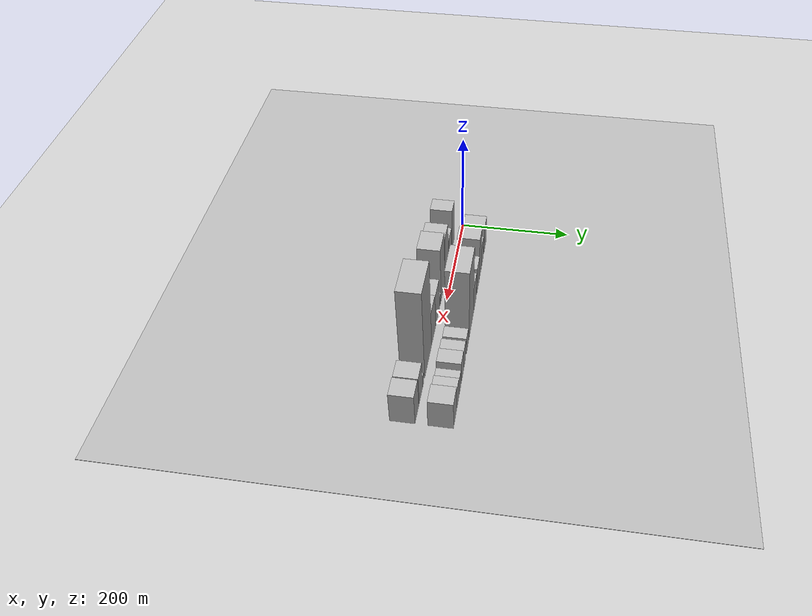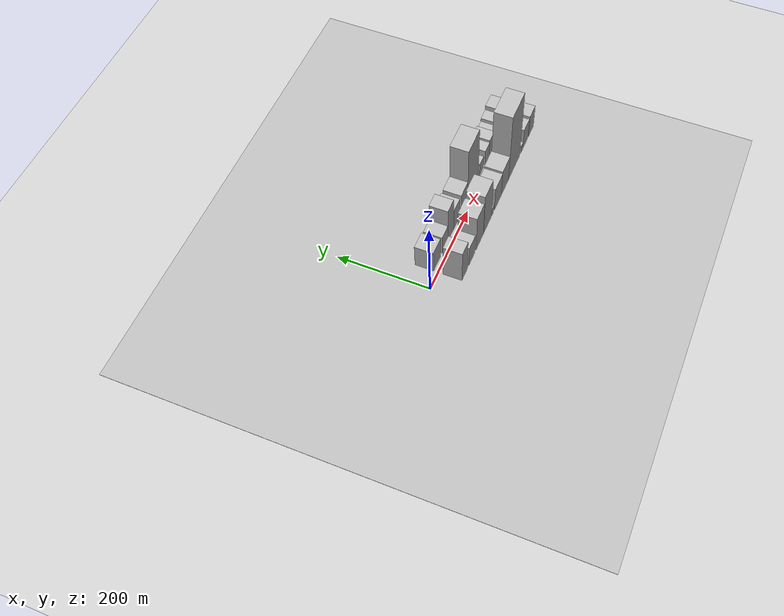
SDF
<?xml version="1.0" encoding="utf-8"?>

<sdf version="1.6">

   <world name="default">

      <gui fullscreen="0">

         <camera name="user_camera">

            <pose>-15 0 4.57585 0 0 0</pose>

            <view_controller>orbit</view_controller>

         </camera>

      </gui>

      <scene>

         <sky>

           <clouds>

             <speed>12</speed>

           </clouds>

         </sky>

         <ambient>0.4 0.4 0.4 1</ambient>

         <background>0.7 0.7 0.7 1</background>

         <shadows>1</shadows>

      </scene>

      <gravity>0 0 -9.8066</gravity>

      <magnetic_field>6e-06 2.3e-05 -4.2e-05</magnetic_field>

      <physics default="0" name="default_physics" type="ode">

         <ode>

            <solver>

               <type>quick</type>

               <iters>10</iters>

               <sor>1.0</sor>

               <use_dynamic_moi_rescaling>0</use_dynamic_moi_rescaling>

            </solver>

            <constraints>

               <cfm>0</cfm>

               <erp>0.2</erp>

               <contact_max_correcting_vel>100</contact_max_correcting_vel>

               <contact_surface_layer>0.001</contact_surface_layer>

            </constraints>

         </ode>

         <max_step_size>0.004</max_step_size>

         <real_time_factor>1</real_time_factor>

         <real_time_update_rate>250</real_time_update_rate>

      </physics>

      <light name="sun" type="directional">

         <cast_shadows>1</cast_shadows>

         <pose>0 0 10 0 0 0</pose>

         <diffuse>0.8 0.8 0.8 1</diffuse>

         <specular>0.2 0.2 0.2 1</specular>

         <attenuation>

            <range>1000</range>

            <constant>0.9</constant>

            <linear>0.01</linear>

            <quadratic>0.001</quadratic>

         </attenuation>

         <direction>-0.5 0.1 -0.9</direction>

      </light>

      <include>

         <name>ground_plane_1</name>

         <uri>model://HANNAS_ground_plane</uri>

         <pose>0 0 0  0 0 0</pose>

      </include>

      <include>

         <name>ground_plane_2</name>

         <uri>model://HANNAS_ground_plane</uri>

         <pose>100 0 0  0 0 0</pose>

      </include>

      <model name="building_1">

         <static>1</static>

         <pose frame="">58.0597 30.0000 0 0.000000 0.000000 1.570796</pose>

         <link name="link">

            <pose frame="">0 0 31.50 0 0 0</pose>

            <collision name="collision">

               <geometry>

                  <box>

                     <size>40.0000 36.1194 63.0000</size>

                  </box>

               </geometry>

               <max_contacts>10</max_contacts>

               <surface>

                  <contact>

                     <ode/>

                  </contact>

                  <bounce/>

                  <friction>

                     <torsional>

                        <ode/>

                     </torsional>

                     <ode/>

                  </friction>

               </surface>

            </collision>

            <visual name="visual">

               <cast_shadows>0</cast_shadows>

               <geometry>

                  <box>

                     <size>40.0000 36.1194 63.0000</size>

                  </box>

               </geometry>

               <material>

                  <script>

                     <uri>model://HANNAS_wall/materials/scripts</uri>

                     <uri>model://HANNAS_wall/materials/textures</uri>

                     <name>vrc/HANNAS_wall</name>

                  </script>

               </material>

            </visual>

            <self_collide>0</self_collide>

            <enable_wind>0</enable_wind>

            <kinematic>0</kinematic>

         </link>

      </model>

      <model name="building_2">

         <static>1</static>

         <pose frame="">100.5278 30.0000 0 0.000000 0.000000 1.570796</pose>

         <link name="link">

            <pose frame="">0 0 27.00 0 0 0</pose>

            <collision name="collision">

               <geometry>

                  <box>

                     <size>40.0000 30.8169 54.0000</size>

                  </box>

               </geometry>

               <max_contacts>10</max_contacts>

               <surface>

                  <contact>

                     <ode/>

                  </contact>

                  <bounce/>

                  <friction>

                     <torsional>

                        <ode/>

                     </torsional>

                     <ode/>

                  </friction>

               </surface>

            </collision>

            <visual name="visual">

               <cast_shadows>0</cast_shadows>

               <geometry>

                  <box>

                     <size>40.0000 30.8169 54.0000</size>

                  </box>

               </geometry>

               <material>

                  <script>

                     <uri>model://HANNAS_wall/materials/scripts</uri>

                     <uri>model://HANNAS_wall/materials/textures</uri>

                     <name>vrc/HANNAS_wall</name>

                  </script>

               </material>

            </visual>

            <self_collide>0</self_collide>

            <enable_wind>0</enable_wind>

            <kinematic>0</kinematic>

         </link>

      </model>

      <model name="building_3">

         <static>1</static>

         <pose frame="">131.2874 30.0000 0 0.000000 0.000000 1.570796</pose>

         <link name="link">

            <pose frame="">0 0 51.00 0 0 0</pose>

            <collision name="collision">

               <geometry>

                  <box>

                     <size>40.0000 30.7022 102.0000</size>

                  </box>

               </geometry>

               <max_contacts>10</max_contacts>

               <surface>

                  <contact>

                     <ode/>

                  </contact>

                  <bounce/>

                  <friction>

                     <torsional>

                        <ode/>

                     </torsional>

                     <ode/>

                  </friction>

               </surface>

            </collision>

            <visual name="visual">

               <cast_shadows>0</cast_shadows>

               <geometry>

                  <box>

                     <size>40.0000 30.7022 102.0000</size>

                  </box>

               </geometry>

               <material>

                  <script>

                     <uri>model://HANNAS_wall/materials/scripts</uri>

                     <uri>model://HANNAS_wall/materials/textures</uri>

                     <name>vrc/HANNAS_wall</name>

                  </script>

               </material>

            </visual>

            <self_collide>0</self_collide>

            <enable_wind>0</enable_wind>

            <kinematic>0</kinematic>

         </link>

      </model>

      <model name="building_4">

         <static>1</static>

         <pose frame="">163.2585 30.0000 0 0.000000 0.000000 1.570796</pose>

         <link name="link">

            <pose frame="">0 0 31.50 0 0 0</pose>

            <collision name="collision">

               <geometry>

                  <box>

                     <size>40.0000 33.2402 63.0000</size>

                  </box>

               </geometry>

               <max_contacts>10</max_contacts>

               <surface>

                  <contact>

                     <ode/>

                  </contact>

                  <bounce/>

                  <friction>

                     <torsional>

                        <ode/>

                     </torsional>

                     <ode/>

                  </friction>

               </surface>

            </collision>

            <visual name="visual">

               <cast_shadows>0</cast_shadows>

               <geometry>

                  <box>

                     <size>40.0000 33.2402 63.0000</size>

                  </box>

               </geometry>

               <material>

                  <script>

                     <uri>model://HANNAS_wall/materials/scripts</uri>

                     <uri>model://HANNAS_wall/materials/textures</uri>

                     <name>vrc/HANNAS_wall</name>

                  </script>

               </material>

            </visual>

            <self_collide>0</self_collide>

            <enable_wind>0</enable_wind>

            <kinematic>0</kinematic>

         </link>

      </model>

      <model name="building_5">

         <static>1</static>

         <pose frame="">206.4949 30.0000 0 0.000000 0.000000 1.570796</pose>

         <link name="link">

            <pose frame="">0 0 31.50 0 0 0</pose>

            <collision name="collision">

               <geometry>

                  <box>

                     <size>40.0000 37.2326 63.0000</size>

                  </box>

               </geometry>

               <max_contacts>10</max_contacts>

               <surface>

                  <contact>

                     <ode/>

                  </contact>

                  <bounce/>

                  <friction>

                     <torsional>

                        <ode/>

                     </torsional>

                     <ode/>

                  </friction>

               </surface>

            </collision>

            <visual name="visual">

               <cast_shadows>0</cast_shadows>

               <geometry>

                  <box>

                     <size>40.0000 37.2326 63.0000</size>

                  </box>

               </geometry>

               <material>

                  <script>

                     <uri>model://HANNAS_wall/materials/scripts</uri>

                     <uri>model://HANNAS_wall/materials/textures</uri>

                     <name>vrc/HANNAS_wall</name>

                  </script>

               </material>

            </visual>

            <self_collide>0</self_collide>

            <enable_wind>0</enable_wind>

            <kinematic>0</kinematic>

         </link>

      </model>

      <model name="building_6">

         <static>1</static>

         <pose frame="">255.5229 30.0000 0 0.000000 0.000000 1.570796</pose>

         <link name="link">

            <pose frame="">0 0 79.50 0 0 0</pose>

            <collision name="collision">

               <geometry>

                  <box>

                     <size>40.0000 60.8234 159.0000</size>

                  </box>

               </geometry>

               <max_contacts>10</max_contacts>

               <surface>

                  <contact>

                     <ode/>

                  </contact>

                  <bounce/>

                  <friction>

                     <torsional>

                        <ode/>

                     </torsional>

                     <ode/>

                  </friction>

               </surface>

            </collision>

            <visual name="visual">

               <cast_shadows>0</cast_shadows>

               <geometry>

                  <box>

                     <size>40.0000 60.8234 159.0000</size>

                  </box>

               </geometry>

               <material>

                  <script>

                     <uri>model://HANNAS_wall/materials/scripts</uri>

                     <uri>model://HANNAS_wall/materials/textures</uri>

                     <name>vrc/HANNAS_wall</name>

                  </script>

               </material>

            </visual>

            <self_collide>0</self_collide>

            <enable_wind>0</enable_wind>

            <kinematic>0</kinematic>

         </link>

      </model>

      <model name="building_7">

         <static>1</static>

         <pose frame="">305.5388 30.0000 0 0.000000 0.000000 1.570796</pose>

         <link name="link">

            <pose frame="">0 0 19.50 0 0 0</pose>

            <collision name="collision">

               <geometry>

                  <box>

                     <size>40.0000 23.2084 39.0000</size>

                  </box>

               </geometry>

               <max_contacts>10</max_contacts>

               <surface>

                  <contact>

                     <ode/>

                  </contact>

                  <bounce/>

                  <friction>

                     <torsional>

                        <ode/>

                     </torsional>

                     <ode/>

                  </friction>

               </surface>

            </collision>

            <visual name="visual">

               <cast_shadows>0</cast_shadows>

               <geometry>

                  <box>

                     <size>40.0000 23.2084 39.0000</size>

                  </box>

               </geometry>

               <material>

                  <script>

                     <uri>model://HANNAS_wall/materials/scripts</uri>

                     <uri>model://HANNAS_wall/materials/textures</uri>

                     <name>vrc/HANNAS_wall</name>

                  </script>

               </material>

            </visual>

            <self_collide>0</self_collide>

            <enable_wind>0</enable_wind>

            <kinematic>0</kinematic>

         </link>

      </model>

      <model name="building_8">

         <static>1</static>

         <pose frame="">339.0068 30.0000 0 0.000000 0.000000 1.570796</pose>

         <link name="link">

            <pose frame="">0 0 22.50 0 0 0</pose>

            <collision name="collision">

               <geometry>

                  <box>

                     <size>40.0000 25.7276 45.0000</size>

                  </box>

               </geometry>

               <max_contacts>10</max_contacts>

               <surface>

                  <contact>

                     <ode/>

                  </contact>

                  <bounce/>

                  <friction>

                     <torsional>

                        <ode/>

                     </torsional>

                     <ode/>

                  </friction>

               </surface>

            </collision>

            <visual name="visual">

               <cast_shadows>0</cast_shadows>

               <geometry>

                  <box>

                     <size>40.0000 25.7276 45.0000</size>

                  </box>

               </geometry>

               <material>

                  <script>

                     <uri>model://HANNAS_wall/materials/scripts</uri>

                     <uri>model://HANNAS_wall/materials/textures</uri>

                     <name>vrc/HANNAS_wall</name>

                  </script>

               </material>

            </visual>

            <self_collide>0</self_collide>

            <enable_wind>0</enable_wind>

            <kinematic>0</kinematic>

         </link>

      </model>

      <model name="building_9">

         <static>1</static>

         <pose frame="">365.6375 30.0000 0 0.000000 0.000000 1.570796</pose>

         <link name="link">

            <pose frame="">0 0 25.50 0 0 0</pose>

            <collision name="collision">

               <geometry>

                  <box>

                     <size>40.0000 27.5338 51.0000</size>

                  </box>

               </geometry>

               <max_contacts>10</max_contacts>

               <surface>

                  <contact>

                     <ode/>

                  </contact>

                  <bounce/>

                  <friction>

                     <torsional>

                        <ode/>

                     </torsional>

                     <ode/>

                  </friction>

               </surface>

            </collision>

            <visual name="visual">

               <cast_shadows>0</cast_shadows>

               <geometry>

                  <box>

                     <size>40.0000 27.5338 51.0000</size>

                  </box>

               </geometry>

               <material>

                  <script>

                     <uri>model://HANNAS_wall/materials/scripts</uri>

                     <uri>model://HANNAS_wall/materials/textures</uri>

                     <name>vrc/HANNAS_wall</name>

                  </script>

               </material>

            </visual>

            <self_collide>0</self_collide>

            <enable_wind>0</enable_wind>

            <kinematic>0</kinematic>

         </link>

      </model>

      <model name="building_10">

         <static>1</static>

         <pose frame="">393.4805 30.0000 0 0.000000 0.000000 1.570796</pose>

         <link name="link">

            <pose frame="">0 0 19.50 0 0 0</pose>

            <collision name="collision">

               <geometry>

                  <box>

                     <size>40.0000 22.1523 39.0000</size>

                  </box>

               </geometry>

               <max_contacts>10</max_contacts>

               <surface>

                  <contact>

                     <ode/>

                  </contact>

                  <bounce/>

                  <friction>

                     <torsional>

                        <ode/>

                     </torsional>

                     <ode/>

                  </friction>

               </surface>

            </collision>

            <visual name="visual">

               <cast_shadows>0</cast_shadows>

               <geometry>

                  <box>

                     <size>40.0000 22.1523 39.0000</size>

                  </box>

               </geometry>

               <material>

                  <script>

                     <uri>model://HANNAS_wall/materials/scripts</uri>

                     <uri>model://HANNAS_wall/materials/textures</uri>

                     <name>vrc/HANNAS_wall</name>

                  </script>

               </material>

            </visual>

            <self_collide>0</self_collide>

            <enable_wind>0</enable_wind>

            <kinematic>0</kinematic>

         </link>

      </model>

      <model name="building_11">

         <static>1</static>

         <pose frame="">417.7669 30.0000 0 0.000000 0.000000 1.570796</pose>

         <link name="link">

            <pose frame="">0 0 24.00 0 0 0</pose>

            <collision name="collision">

               <geometry>

                  <box>

                     <size>40.0000 26.4206 48.0000</size>

                  </box>

               </geometry>

               <max_contacts>10</max_contacts>

               <surface>

                  <contact>

                     <ode/>

                  </contact>

                  <bounce/>

                  <friction>

                     <torsional>

                        <ode/>

                     </torsional>

                     <ode/>

                  </friction>

               </surface>

            </collision>

            <visual name="visual">

               <cast_shadows>0</cast_shadows>

               <geometry>

                  <box>

                     <size>40.0000 26.4206 48.0000</size>

                  </box>

               </geometry>

               <material>

                  <script>

                     <uri>model://HANNAS_wall/materials/scripts</uri>

                     <uri>model://HANNAS_wall/materials/textures</uri>

                     <name>vrc/HANNAS_wall</name>

                  </script>

               </material>

            </visual>

            <self_collide>0</self_collide>

            <enable_wind>0</enable_wind>

            <kinematic>0</kinematic>

         </link>

      </model>

      <model name="building_12">

         <static>1</static>

         <pose frame="">448.1308 30.0000 0 0.000000 0.000000 1.570796</pose>

         <link name="link">

            <pose frame="">0 0 30.00 0 0 0</pose>

            <collision name="collision">

               <geometry>

                  <box>

                     <size>40.0000 34.3073 60.0000</size>

                  </box>

               </geometry>

               <max_contacts>10</max_contacts>

               <surface>

                  <contact>

                     <ode/>

                  </contact>

                  <bounce/>

                  <friction>

                     <torsional>

                        <ode/>

                     </torsional>

                     <ode/>

                  </friction>

               </surface>

            </collision>

            <visual name="visual">

               <cast_shadows>0</cast_shadows>

               <geometry>

                  <box>

                     <size>40.0000 34.3073 60.0000</size>

                  </box>

               </geometry>

               <material>

                  <script>

                     <uri>model://HANNAS_wall/materials/scripts</uri>

                     <uri>model://HANNAS_wall/materials/textures</uri>

                     <name>vrc/HANNAS_wall</name>

                  </script>

               </material>

            </visual>

            <self_collide>0</self_collide>

            <enable_wind>0</enable_wind>

            <kinematic>0</kinematic>

         </link>

      </model>

      <model name="building_13">

         <static>1</static>

         <pose frame="">54.8629 -30.0000 0 0.000000 0.000000 1.570796</pose>

         <link name="link">

            <pose frame="">0 0 46.50 0 0 0</pose>

            <collision name="collision">

               <geometry>

                  <box>

                     <size>40.0000 29.7259 93.0000</size>

                  </box>

               </geometry>

               <max_contacts>10</max_contacts>

               <surface>

                  <contact>

                     <ode/>

                  </contact>

                  <bounce/>

                  <friction>

                     <torsional>

                        <ode/>

                     </torsional>

                     <ode/>

                  </friction>

               </surface>

            </collision>

            <visual name="visual">

               <cast_shadows>0</cast_shadows>

               <geometry>

                  <box>

                     <size>40.0000 29.7259 93.0000</size>

                  </box>

               </geometry>

               <material>

                  <script>

                     <uri>model://HANNAS_wall/materials/scripts</uri>

                     <uri>model://HANNAS_wall/materials/textures</uri>

                     <name>vrc/HANNAS_wall</name>

                  </script>

               </material>

            </visual>

            <self_collide>0</self_collide>

            <enable_wind>0</enable_wind>

            <kinematic>0</kinematic>

         </link>

      </model>

      <model name="building_14">

         <static>1</static>

         <pose frame="">94.3045 -30.0000 0 0.000000 0.000000 1.570796</pose>

         <link name="link">

            <pose frame="">0 0 30.00 0 0 0</pose>

            <collision name="collision">

               <geometry>

                  <box>

                     <size>40.0000 33.1572 60.0000</size>

                  </box>

               </geometry>

               <max_contacts>10</max_contacts>

               <surface>

                  <contact>

                     <ode/>

                  </contact>

                  <bounce/>

                  <friction>

                     <torsional>

                        <ode/>

                     </torsional>

                     <ode/>

                  </friction>

               </surface>

            </collision>

            <visual name="visual">

               <cast_shadows>0</cast_shadows>

               <geometry>

                  <box>

                     <size>40.0000 33.1572 60.0000</size>

                  </box>

               </geometry>

               <material>

                  <script>

                     <uri>model://HANNAS_wall/materials/scripts</uri>

                     <uri>model://HANNAS_wall/materials/textures</uri>

                     <name>vrc/HANNAS_wall</name>

                  </script>

               </material>

            </visual>

            <self_collide>0</self_collide>

            <enable_wind>0</enable_wind>

            <kinematic>0</kinematic>

         </link>

      </model>

      <model name="building_15">

         <static>1</static>

         <pose frame="">137.6215 -30.0000 0 0.000000 0.000000 1.570796</pose>

         <link name="link">

            <pose frame="">0 0 52.50 0 0 0</pose>

            <collision name="collision">

               <geometry>

                  <box>

                     <size>40.0000 39.4770 105.0000</size>

                  </box>

               </geometry>

               <max_contacts>10</max_contacts>

               <surface>

                  <contact>

                     <ode/>

                  </contact>

                  <bounce/>

                  <friction>

                     <torsional>

                        <ode/>

                     </torsional>

                     <ode/>

                  </friction>

               </surface>

            </collision>

            <visual name="visual">

               <cast_shadows>0</cast_shadows>

               <geometry>

                  <box>

                     <size>40.0000 39.4770 105.0000</size>

                  </box>

               </geometry>

               <material>

                  <script>

                     <uri>model://HANNAS_wall/materials/scripts</uri>

                     <uri>model://HANNAS_wall/materials/textures</uri>

                     <name>vrc/HANNAS_wall</name>

                  </script>

               </material>

            </visual>

            <self_collide>0</self_collide>

            <enable_wind>0</enable_wind>

            <kinematic>0</kinematic>

         </link>

      </model>

      <model name="building_16">

         <static>1</static>

         <pose frame="">182.8412 -30.0000 0 0.000000 0.000000 1.570796</pose>

         <link name="link">

            <pose frame="">0 0 61.50 0 0 0</pose>

            <collision name="collision">

               <geometry>

                  <box>

                     <size>40.0000 44.9625 123.0000</size>

                  </box>

               </geometry>

               <max_contacts>10</max_contacts>

               <surface>

                  <contact>

                     <ode/>

                  </contact>

                  <bounce/>

                  <friction>

                     <torsional>

                        <ode/>

                     </torsional>

                     <ode/>

                  </friction>

               </surface>

            </collision>

            <visual name="visual">

               <cast_shadows>0</cast_shadows>

               <geometry>

                  <box>

                     <size>40.0000 44.9625 123.0000</size>

                  </box>

               </geometry>

               <material>

                  <script>

                     <uri>model://HANNAS_wall/materials/scripts</uri>

                     <uri>model://HANNAS_wall/materials/textures</uri>

                     <name>vrc/HANNAS_wall</name>

                  </script>

               </material>

            </visual>

            <self_collide>0</self_collide>

            <enable_wind>0</enable_wind>

            <kinematic>0</kinematic>

         </link>

      </model>

      <model name="building_17">

         <static>1</static>

         <pose frame="">210.8736 -30.0000 0 0.000000 0.000000 1.570796</pose>

         <link name="link">

            <pose frame="">0 0 12.00 0 0 0</pose>

            <collision name="collision">

               <geometry>

                  <box>

                     <size>40.0000 11.1022 24.0000</size>

                  </box>

               </geometry>

               <max_contacts>10</max_contacts>

               <surface>

                  <contact>

                     <ode/>

                  </contact>

                  <bounce/>

                  <friction>

                     <torsional>

                        <ode/>

                     </torsional>

                     <ode/>

                  </friction>

               </surface>

            </collision>

            <visual name="visual">

               <cast_shadows>0</cast_shadows>

               <geometry>

                  <box>

                     <size>40.0000 11.1022 24.0000</size>

                  </box>

               </geometry>

               <material>

                  <script>

                     <uri>model://HANNAS_wall/materials/scripts</uri>

                     <uri>model://HANNAS_wall/materials/textures</uri>

                     <name>vrc/HANNAS_wall</name>

                  </script>

               </material>

            </visual>

            <self_collide>0</self_collide>

            <enable_wind>0</enable_wind>

            <kinematic>0</kinematic>

         </link>

      </model>

      <model name="building_18">

         <static>1</static>

         <pose frame="">242.7309 -30.0000 0 0.000000 0.000000 1.570796</pose>

         <link name="link">

            <pose frame="">0 0 36.00 0 0 0</pose>

            <collision name="collision">

               <geometry>

                  <box>

                     <size>40.0000 42.6126 72.0000</size>

                  </box>

               </geometry>

               <max_contacts>10</max_contacts>

               <surface>

                  <contact>

                     <ode/>

                  </contact>

                  <bounce/>

                  <friction>

                     <torsional>

                        <ode/>

                     </torsional>

                     <ode/>

                  </friction>

               </surface>

            </collision>

            <visual name="visual">

               <cast_shadows>0</cast_shadows>

               <geometry>

                  <box>

                     <size>40.0000 42.6126 72.0000</size>

                  </box>

               </geometry>

               <material>

                  <script>

                     <uri>model://HANNAS_wall/materials/scripts</uri>

                     <uri>model://HANNAS_wall/materials/textures</uri>

                     <name>vrc/HANNAS_wall</name>

                  </script>

               </material>

            </visual>

            <self_collide>0</self_collide>

            <enable_wind>0</enable_wind>

            <kinematic>0</kinematic>

         </link>

      </model>

      <model name="building_19">

         <static>1</static>

         <pose frame="">285.2418 -30.0000 0 0.000000 0.000000 1.570796</pose>

         <link name="link">

            <pose frame="">0 0 39.00 0 0 0</pose>

            <collision name="collision">

               <geometry>

                  <box>

                     <size>40.0000 42.4092 78.0000</size>

                  </box>

               </geometry>

               <max_contacts>10</max_contacts>

               <surface>

                  <contact>

                     <ode/>

                  </contact>

                  <bounce/>

                  <friction>

                     <torsional>

                        <ode/>

                     </torsional>

                     <ode/>

                  </friction>

               </surface>

            </collision>

            <visual name="visual">

               <cast_shadows>0</cast_shadows>

               <geometry>

                  <box>

                     <size>40.0000 42.4092 78.0000</size>

                  </box>

               </geometry>

               <material>

                  <script>

                     <uri>model://HANNAS_wall/materials/scripts</uri>

                     <uri>model://HANNAS_wall/materials/textures</uri>

                     <name>vrc/HANNAS_wall</name>

                  </script>

               </material>

            </visual>

            <self_collide>0</self_collide>

            <enable_wind>0</enable_wind>

            <kinematic>0</kinematic>

         </link>

      </model>

      <model name="building_20">

         <static>1</static>

         <pose frame="">341.2370 -30.0000 0 0.000000 0.000000 1.570796</pose>

         <link name="link">

            <pose frame="">0 0 99.00 0 0 0</pose>

            <collision name="collision">

               <geometry>

                  <box>

                     <size>40.0000 69.5810 198.0000</size>

                  </box>

               </geometry>

               <max_contacts>10</max_contacts>

               <surface>

                  <contact>

                     <ode/>

                  </contact>

                  <bounce/>

                  <friction>

                     <torsional>

                        <ode/>

                     </torsional>

                     <ode/>

                  </friction>

               </surface>

            </collision>

            <visual name="visual">

               <cast_shadows>0</cast_shadows>

               <geometry>

                  <box>

                     <size>40.0000 69.5810 198.0000</size>

                  </box>

               </geometry>

               <material>

                  <script>

                     <uri>model://HANNAS_wall/materials/scripts</uri>

                     <uri>model://HANNAS_wall/materials/textures</uri>

                     <name>vrc/HANNAS_wall</name>

                  </script>

               </material>

            </visual>

            <self_collide>0</self_collide>

            <enable_wind>0</enable_wind>

            <kinematic>0</kinematic>

         </link>

      </model>

      <model name="building_21">

         <static>1</static>

         <pose frame="">389.5616 -30.0000 0 0.000000 0.000000 1.570796</pose>

         <link name="link">

            <pose frame="">0 0 12.00 0 0 0</pose>

            <collision name="collision">

               <geometry>

                  <box>

                     <size>40.0000 11.0682 24.0000</size>

                  </box>

               </geometry>

               <max_contacts>10</max_contacts>

               <surface>

                  <contact>

                     <ode/>

                  </contact>

                  <bounce/>

                  <friction>

                     <torsional>

                        <ode/>

                     </torsional>

                     <ode/>

                  </friction>

               </surface>

            </collision>

            <visual name="visual">

               <cast_shadows>0</cast_shadows>

               <geometry>

                  <box>

                     <size>40.0000 11.0682 24.0000</size>

                  </box>

               </geometry>

               <material>

                  <script>

                     <uri>model://HANNAS_wall/materials/scripts</uri>

                     <uri>model://HANNAS_wall/materials/textures</uri>

                     <name>vrc/HANNAS_wall</name>

                  </script>

               </material>

            </visual>

            <self_collide>0</self_collide>

            <enable_wind>0</enable_wind>

            <kinematic>0</kinematic>

         </link>

      </model>

      <model name="building_22">

         <static>1</static>

         <pose frame="">411.2969 -30.0000 0 0.000000 0.000000 1.570796</pose>

         <link name="link">

            <pose frame="">0 0 31.50 0 0 0</pose>

            <collision name="collision">

               <geometry>

                  <box>

                     <size>40.0000 32.4023 63.0000</size>

                  </box>

               </geometry>

               <max_contacts>10</max_contacts>

               <surface>

                  <contact>

                     <ode/>

                  </contact>

                  <bounce/>

                  <friction>

                     <torsional>

                        <ode/>

                     </torsional>

                     <ode/>

                  </friction>

               </surface>

            </collision>

            <visual name="visual">

               <cast_shadows>0</cast_shadows>

               <geometry>

                  <box>

                     <size>40.0000 32.4023 63.0000</size>

                  </box>

               </geometry>

               <material>

                  <script>

                     <uri>model://HANNAS_wall/materials/scripts</uri>

                     <uri>model://HANNAS_wall/materials/textures</uri>

                     <name>vrc/HANNAS_wall</name>

                  </script>

               </material>

            </visual>

            <self_collide>0</self_collide>

            <enable_wind>0</enable_wind>

            <kinematic>0</kinematic>

         </link>

      </model>

      <model name="building_23">

         <static>1</static>

         <pose frame="">448.2473 -30.0000 0 0.000000 0.000000 1.570796</pose>

         <link name="link">

            <pose frame="">0 0 33.00 0 0 0</pose>

            <collision name="collision">

               <geometry>

                  <box>

                     <size>40.0000 33.4984 66.0000</size>

                  </box>

               </geometry>

               <max_contacts>10</max_contacts>

               <surface>

                  <contact>

                     <ode/>

                  </contact>

                  <bounce/>

                  <friction>

                     <torsional>

                        <ode/>

                     </torsional>

                     <ode/>

                  </friction>

               </surface>

            </collision>

            <visual name="visual">

               <cast_shadows>0</cast_shadows>

               <geometry>

                  <box>

                     <size>40.0000 33.4984 66.0000</size>

                  </box>

               </geometry>

               <material>

                  <script>

                     <uri>model://HANNAS_wall/materials/scripts</uri>

                     <uri>model://HANNAS_wall/materials/textures</uri>

                     <name>vrc/HANNAS_wall</name>

                  </script>

               </material>

            </visual>

            <self_collide>0</self_collide>

            <enable_wind>0</enable_wind>

            <kinematic>0</kinematic>

         </link>

      </model>

   </world>

</sdf>

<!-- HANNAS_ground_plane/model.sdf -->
<sdf version="1.4">
<model name="HANNAS_ground_plane">
  <static>true</static>
    <link name="link">
      <collision name="collision">
        <geometry>
          <plane>
            <normal>0 0 1</normal>
            <size>1000 1000</size>
          </plane>
        </geometry>
        <surface>
          <friction>
            <ode>
              <mu>100</mu>
              <mu2>50</mu2>
            </ode>
          </friction>
        </surface>
      </collision>
      <visual name="visual">
        <cast_shadows>false</cast_shadows>
        <geometry>
          <plane>
            <normal>0 0 1</normal>
            <size>1000 1000</size>
          </plane>
        </geometry>
        <material>
          <script>
            <uri>model://HANNAS_ground_plane/materials/scripts/HANNAS_ground_plane.material</uri>
	    <uri>model://HANNAS_ground_plane/materials/textures</uri>
            <name>HANNASGroundPlane/Image</name>
          </script>
        </material>
      </visual>
    </link>
  </model>
</sdf>
